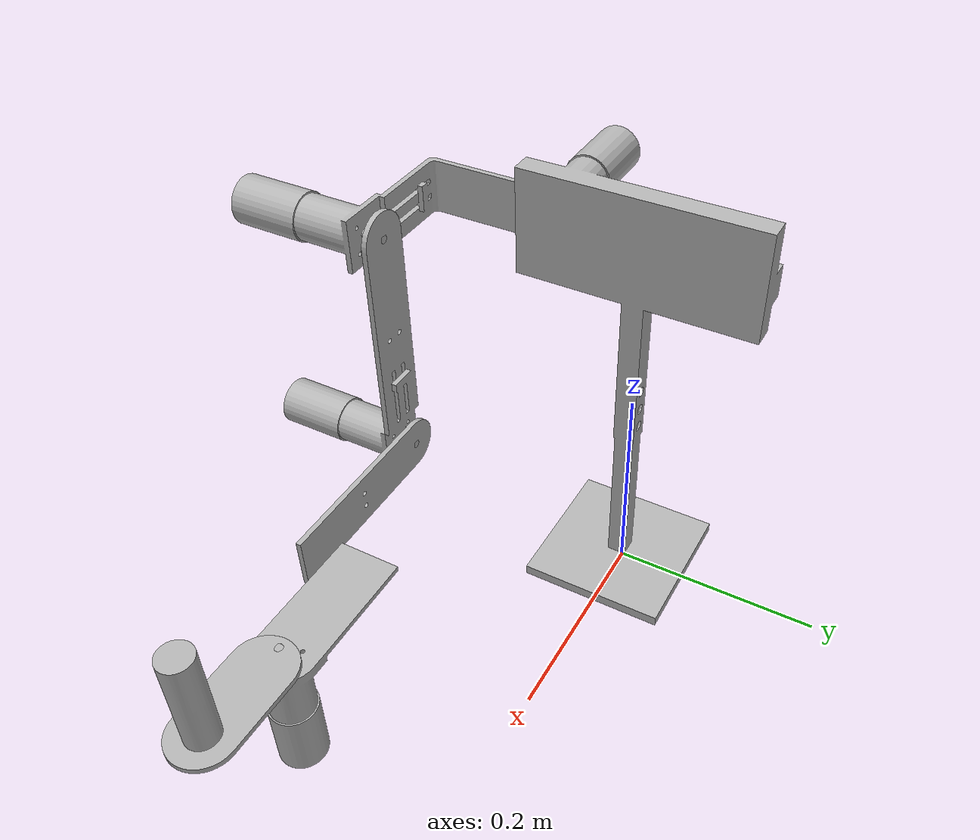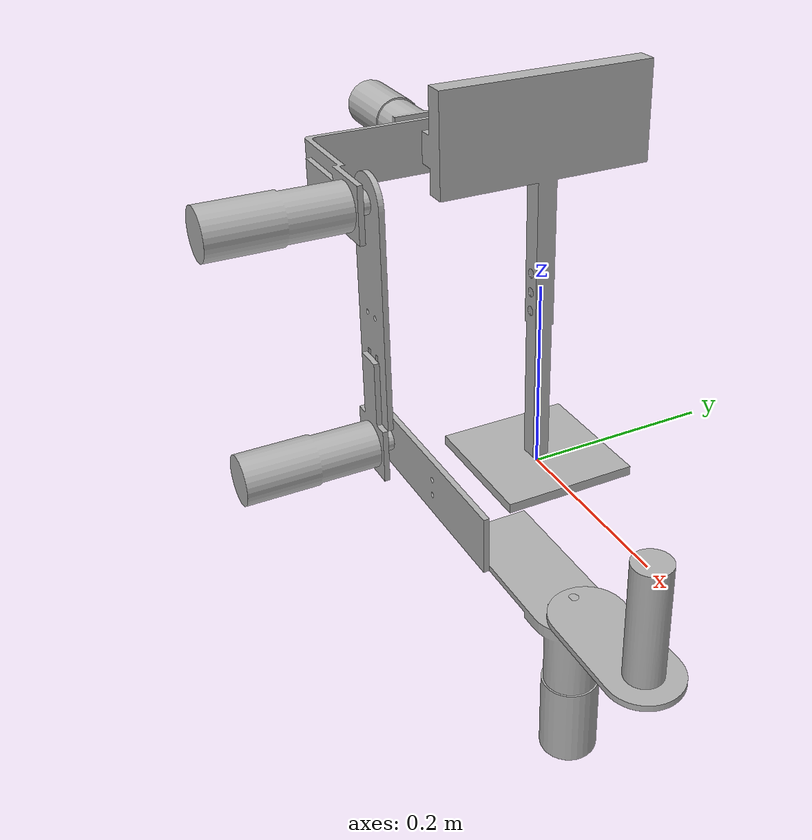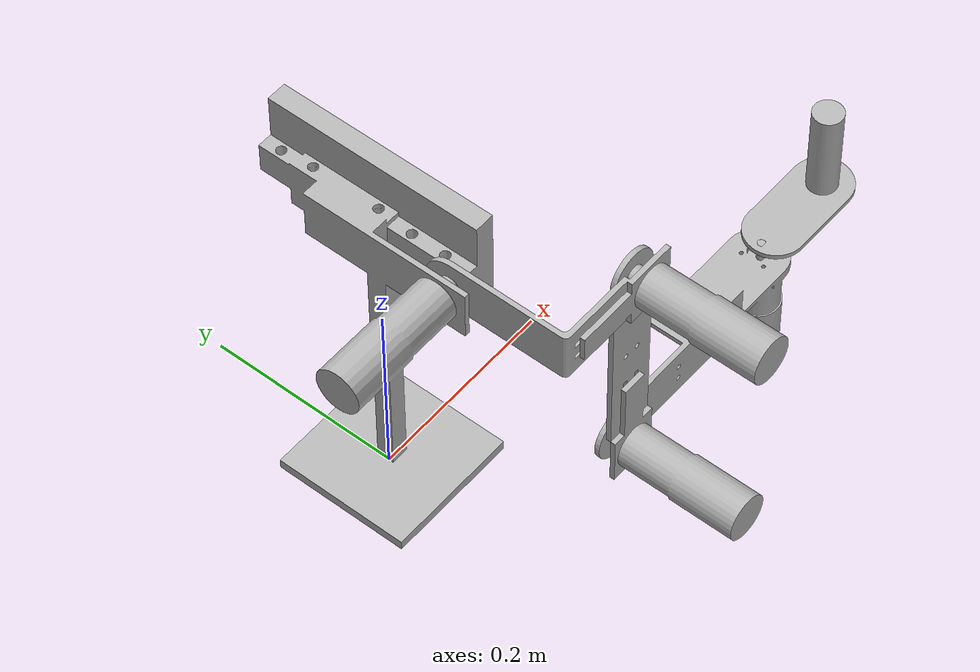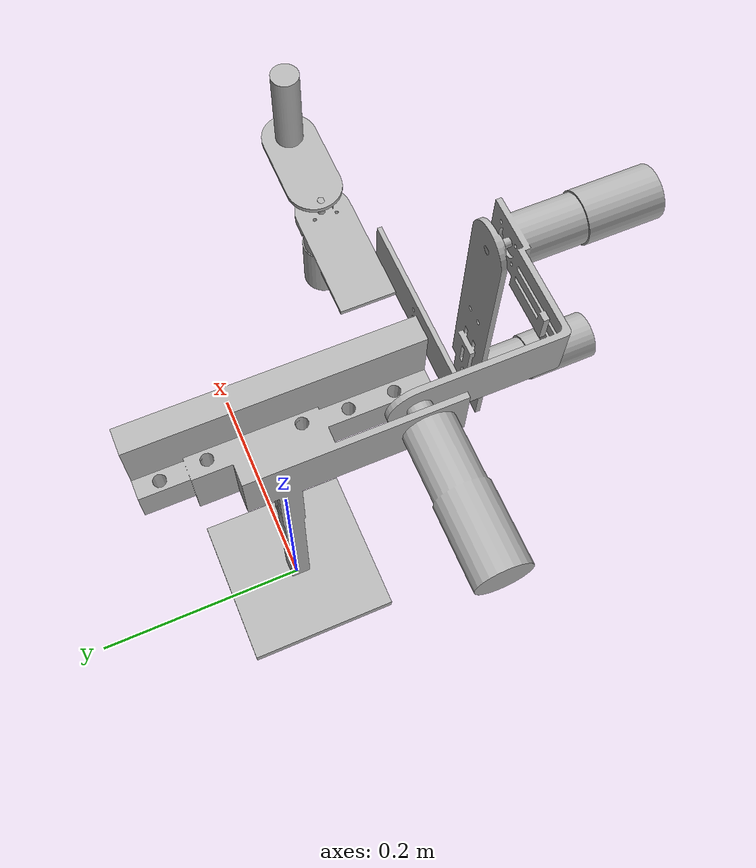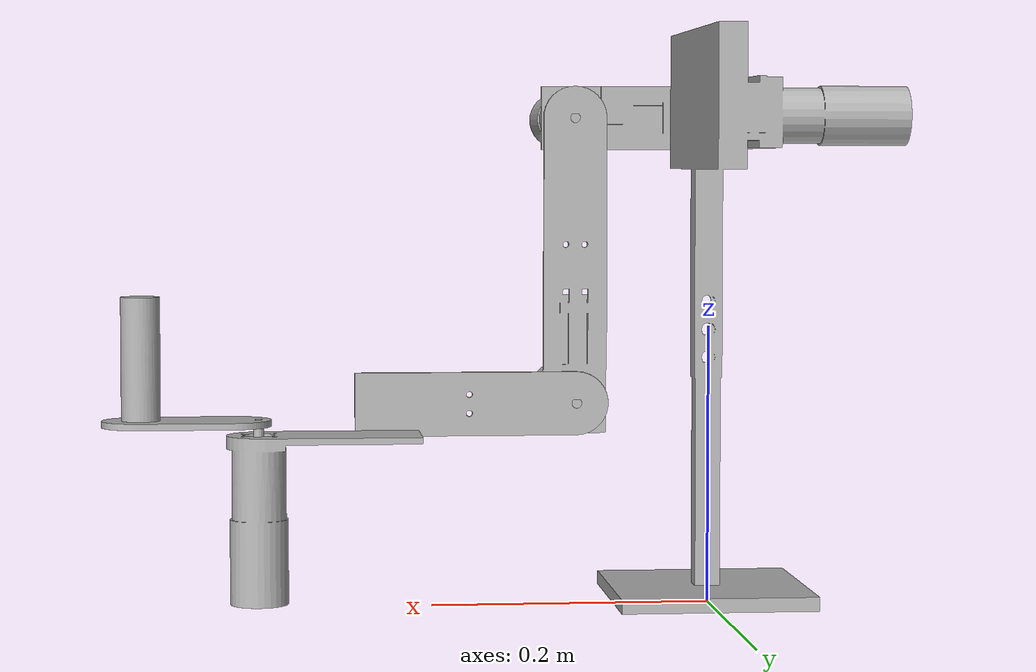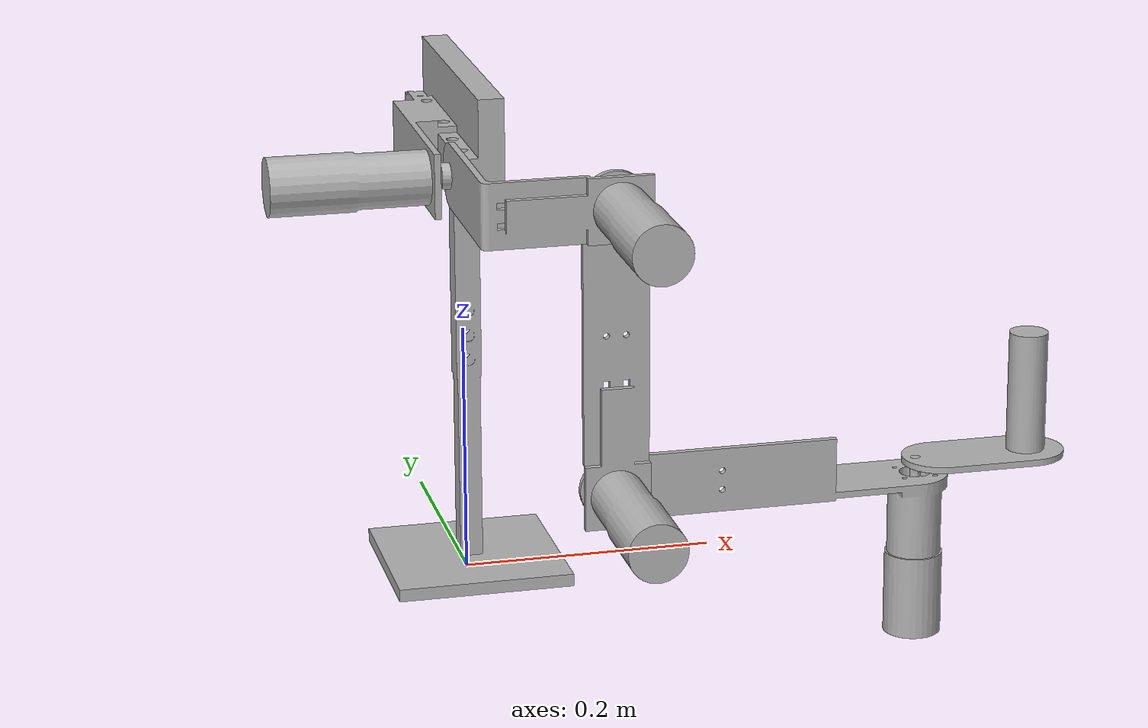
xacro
<?xml version="1.0" ?>
<robot name="ule_assembly" xmlns:xacro="http://www.ros.org/wiki/xacro">

<xacro:include filename="$(find ule_assembly_description)/urdf/materials.xacro" />
<xacro:include filename="$(find ule_assembly_description)/urdf/ule_assembly.trans" />
<xacro:include filename="$(find ule_assembly_description)/urdf/ule_assembly.gazebo" />

<link name="world"/>
<joint name="joint_base" type="fixed">
    <parent link="world"/>
    <child link="base_link"/>
</joint>

<link name="base_link">
  <inertial>
    <origin xyz="-0.022012879362131157 -0.019220083171915193 0.2816005117351987" rpy="0 0 0"/>
    <mass value="1.093144842042191"/>
    <inertia ixx="0.026076" iyy="0.024262" izz="0.006451" ixy="-0.001557" iyz="0.001307" ixz="0.001824"/>
  </inertial>
  <visual>
    <origin xyz="0 0 0" rpy="0 0 0"/>
    <geometry>
      <mesh filename="package://ule_assembly_description/meshes/base_link.stl" scale="0.001 0.001 0.001"/>
    </geometry>
    <material name="silver"/>
  </visual>
  <collision>
    <origin xyz="0 0 0" rpy="0 0 0"/>
    <geometry>
      <mesh filename="package://ule_assembly_description/meshes/base_link.stl" scale="0.001 0.001 0.001"/>
    </geometry>
  </collision>
</link>

<link name="Solid_2_v1_1">
  <inertial>
    <origin xyz="0.07694860321984921 -0.1578483785333 2.1017537927547902e-05" rpy="0 0 0"/>
    <mass value="0.25339650282694065"/>
    <inertia ixx="0.00097" iyy="0.000416" izz="0.001316" ixy="0.000458" iyz="0.0" ixz="-0.0"/>
  </inertial>
  <visual>
    <origin xyz="0.023592 0.100266 -0.352837" rpy="0 0 0"/>
    <geometry>
      <mesh filename="package://ule_assembly_description/meshes/Solid_2_v1_1.stl" scale="0.001 0.001 0.001"/>
    </geometry>
    <material name="silver"/>
  </visual>
  <collision>
    <origin xyz="0.023592 0.100266 -0.352837" rpy="0 0 0"/>
    <geometry>
      <mesh filename="package://ule_assembly_description/meshes/Solid_2_v1_1.stl" scale="0.001 0.001 0.001"/>
    </geometry>
  </collision>
</link>

<link name="Solid_3_v1_1">
  <inertial>
    <origin xyz="-2.0857283529948645e-05 -0.05269910669425781 -0.1932760159215091" rpy="0 0 0"/>
    <mass value="0.25465015328598006"/>
    <inertia ixx="0.001556" iyy="0.001124" izz="0.000503" ixy="-0.0" iyz="-0.000401" ixz="-0.0"/>
  </inertial>
  <visual>
    <origin xyz="-0.073378 0.203266 -0.352866" rpy="0 0 0"/>
    <geometry>
      <mesh filename="package://ule_assembly_description/meshes/Solid_3_v1_1.stl" scale="0.001 0.001 0.001"/>
    </geometry>
    <material name="silver"/>
  </visual>
  <collision>
    <origin xyz="-0.073378 0.203266 -0.352866" rpy="0 0 0"/>
    <geometry>
      <mesh filename="package://ule_assembly_description/meshes/Solid_3_v1_1.stl" scale="0.001 0.001 0.001"/>
    </geometry>
  </collision>
</link>

<link name="Solid_4_v1_1">
  <inertial>
    <origin xyz="0.2108236852870592 0.024189400464239508 -0.06364138139946746" rpy="0 0 0"/>
    <mass value="0.28213735045329447"/>
    <inertia ixx="0.000747" iyy="0.00215" izz="0.001565" ixy="-0.000223" iyz="0.000104" ixz="0.000652"/>
  </inertial>
  <visual>
    <origin xyz="-0.073349 0.191266 -0.127896" rpy="0 0 0"/>
    <geometry>
      <mesh filename="package://ule_assembly_description/meshes/Solid_4_v1_1.stl" scale="0.001 0.001 0.001"/>
    </geometry>
    <material name="silver"/>
  </visual>
  <collision>
    <origin xyz="-0.073349 0.191266 -0.127896" rpy="0 0 0"/>
    <geometry>
      <mesh filename="package://ule_assembly_description/meshes/Solid_4_v1_1.stl" scale="0.001 0.001 0.001"/>
    </geometry>
  </collision>
</link>

<link name="Solid_5_v1_1">
  <inertial>
    <origin xyz="0.07815512759409599 -5.687510059027012e-07 0.03039909226963544" rpy="0 0 0"/>
    <mass value="0.10205551496950795"/>
    <inertia ixx="0.000121" iyy="0.00018" izz="8.6e-05" ixy="-0.0" iyz="-0.0" ixz="-4e-05"/>
  </inertial>
  <visual>
    <origin xyz="-0.323349 0.161266 -0.119896" rpy="0 0 0"/>
    <geometry>
      <mesh filename="package://ule_assembly_description/meshes/Solid_5_v1_1.stl" scale="0.001 0.001 0.001"/>
    </geometry>
    <material name="silver"/>
  </visual>
  <collision>
    <origin xyz="-0.323349 0.161266 -0.119896" rpy="0 0 0"/>
    <geometry>
      <mesh filename="package://ule_assembly_description/meshes/Solid_5_v1_1.stl" scale="0.001 0.001 0.001"/>
    </geometry>
  </collision>
</link>

<joint name="Rev1" type="revolute">
  <origin xyz="-0.023592 -0.100266 0.352837" rpy="0 0 0"/>
  <parent link="base_link"/>
  <child link="Solid_2_v1_1"/>
  <axis xyz="1.0 0.0 0.0"/>
  <limit upper="0.0" lower="-1.22173" effort="100" velocity="100"/>
</joint>

<joint name="Rev2" type="revolute">
  <origin xyz="0.09697 -0.103 2.9e-05" rpy="0 0 0"/>
  <parent link="Solid_2_v1_1"/>
  <child link="Solid_3_v1_1"/>
  <axis xyz="-0.0 1.0 0.0"/>
  <limit upper="0.0" lower="-2.094395" effort="100" velocity="100"/>
</joint>

<joint name="Rev3" type="revolute">
  <origin xyz="-2.9e-05 0.012 -0.22497" rpy="0 0 0"/>
  <parent link="Solid_3_v1_1"/>
  <child link="Solid_4_v1_1"/>
  <axis xyz="-0.0 1.0 0.0"/>
  <limit upper="1.570796" lower="-0.698132" effort="100" velocity="100"/>
</joint>

<joint name="Rev4" type="revolute">
  <origin xyz="0.25 0.03 -0.008" rpy="0 0 0"/>
  <parent link="Solid_4_v1_1"/>
  <child link="Solid_5_v1_1"/>
  <axis xyz="-0.0 0.0 1.0"/>
  <limit upper="1.047198" lower="-1.134464" effort="100" velocity="100"/>
</joint>

</robot>

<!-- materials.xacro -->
<robot name="ule_assembly" xmlns:xacro="http://www.ros.org/wiki/xacro" >

<material name="silver">
  <color rgba="0.700 0.700 0.700 1.000"/>
</material>

</robot>

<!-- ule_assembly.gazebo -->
<robot name="ule_assembly" xmlns:xacro="http://www.ros.org/wiki/xacro" >

<xacro:property name="body_color" value="Gazebo/Silver" />

<gazebo>
  <plugin name="gazebo_ros_control" filename="libgazebo_ros_control.so">
    <robotNamespace>/ule_assembly_controller</robotNamespace>
  </plugin>
</gazebo>

<gazebo reference="base_link">
  <material>${body_color}</material>
  <mu1>0.2</mu1>
  <mu2>0.2</mu2>
  <selfCollide>true</selfCollide>
  <gravity>true</gravity>
</gazebo>

<gazebo reference="Solid_2_v1_1">
  <material>${body_color}</material>
  <mu1>0.2</mu1>
  <mu2>0.2</mu2>
  <selfCollide>true</selfCollide>
</gazebo>

<gazebo reference="Solid_3_v1_1">
  <material>${body_color}</material>
  <mu1>0.2</mu1>
  <mu2>0.2</mu2>
  <selfCollide>true</selfCollide>
</gazebo>

<gazebo reference="Solid_4_v1_1">
  <material>${body_color}</material>
  <mu1>0.2</mu1>
  <mu2>0.2</mu2>
  <selfCollide>true</selfCollide>
</gazebo>

<gazebo reference="Solid_5_v1_1">
  <material>${body_color}</material>
  <mu1>0.2</mu1>
  <mu2>0.2</mu2>
  <selfCollide>true</selfCollide>
</gazebo>

<gazebo reference="Rev1">
    <provideFeedback>true</provideFeedback>
</gazebo>
<gazebo>

<plugin name="ft_sensor" filename="libgazebo_ros_ft_sensor.so">
        <updateRate>100.0</updateRate>
        <topicName>Rev1_sensor_topic</topicName>
        <jointName>Rev1</jointName>
    </plugin>
</gazebo>

</robot>
